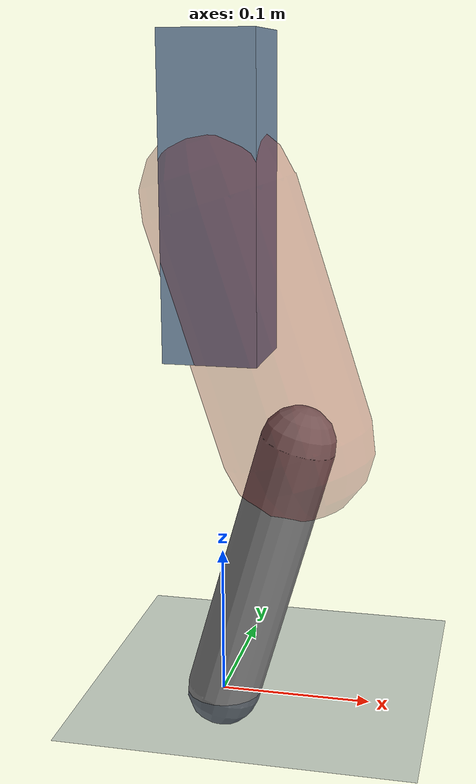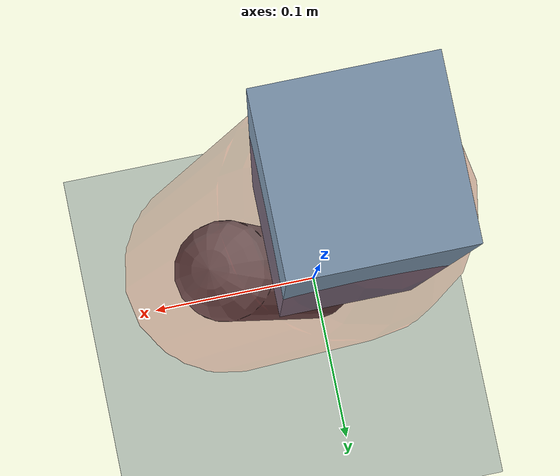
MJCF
<mujoco model="Hopper2D">
	<compiler inertiafromgeom="true" angle="radian" />
	<option timestep="0.001" integrator="implicit" cone="elliptic" solver="Newton" tolerance="1e-10" />

	<default>
		<geom contype="1" conaffinity="1" condim="3" friction="2 0.005 0.0001" solref="0.005 1" />
		<joint limited="true" damping="0.1" />
	</default>

	<asset>
		<texture name="skybox" type="skybox" builtin="gradient" rgb1=".4 .6 .8" rgb2="0 0 0" width="800" height="800" />
		<texture name="grid" type="2d" builtin="checker" rgb1=".1 .2 .3" rgb2=".2 .3 .4" width="300" height="300" mark="edge" markrgb=".2 .3 .4" />
		<material name="ground" texture="grid" texrepeat="1 1" texuniform="true" reflectance="0.1" />
		<material name="leg" rgba="0.5 0.6 0.7 1" />
	</asset>

	<worldbody>

		<geom name="floor" type="plane" size="5 5 0.25" material="ground" />

		<light directional="false" diffuse="0.8 0.8 0.8" specular="0.3 0.3 0.3" pos="0 0 2" dir="0 0 -1" />
		<light mode="targetbodycom" target="base" directional="false" diffuse="0.8 0.8 0.8" specular="0.3 0.3 0.3" pos="0 0 2" dir="0 0 -1" />

		<camera name="fixed" pos="0 -2 1" xyaxes="1 0 0 0 0 1" />
		<camera name="tracking" mode="trackcom" pos="0 -3 1" />

		<body name="root" pos="0 0 0.33310620765320686">
			<joint name="slide_x" type="slide" axis="1 0 0" range="-100 100" />
			<joint name="slide_z" type="slide" axis="0 0 1" range="0 10" />

			<body name="base" pos="0 0 0">
				<geom name="torso" type="box" size="0.03 0.03 0.1" mass="1.936" material="leg" />

				<body name="link1" pos="0 0 0" euler="0 1.2563330733937659 0">
					<joint type="hinge" axis="0 -1 0" pos="0 0 0" name="hinge1" limited="true" range="-3.14 3.14" stiffness="0" damping="0.1" />
					<geom name="thigh" type="capsule" fromto="0 0 0 0.16342316629124787 0 0" size="0.05" rgba="0.5 0 0 0.3" mass="0.6405155990989948" />

					<body name="link2" pos="0.16342316629124787 0 0" euler="0 0.5916035339555862 0">
						<joint type="hinge" axis="0 -1 0" pos="0 0 0" name="hinge2" limited="true" range="-3.14 3.14" stiffness="0" damping="0.1" />
						<geom name="shank" type="capsule" fromto="0 0 0 0.1847464914352269 0 0" size="0.025" mass="0.38797184229170417" />

					</body>
				</body>
			</body>
		</body>
	</worldbody>

	<actuator>
		<motor name="torque1" joint="hinge1" ctrlrange="-43.52432603990669 43.52432603990669" ctrllimited="true" gear="1" />
		<motor name="torque2" joint="hinge2" ctrlrange="-42.92801295609322 42.92801295609322" ctrllimited="true" gear="1" />
	</actuator>
</mujoco>
